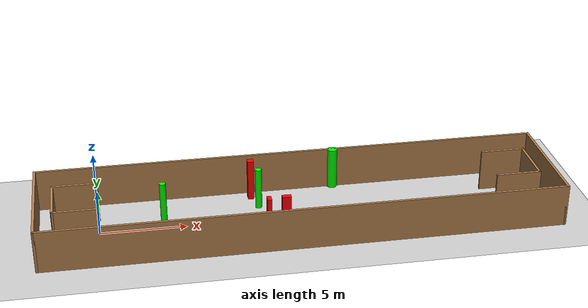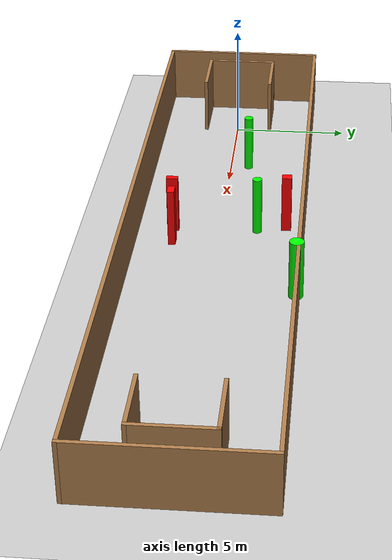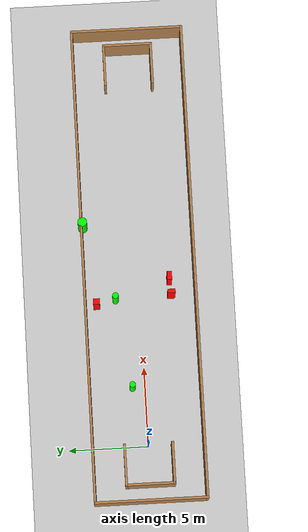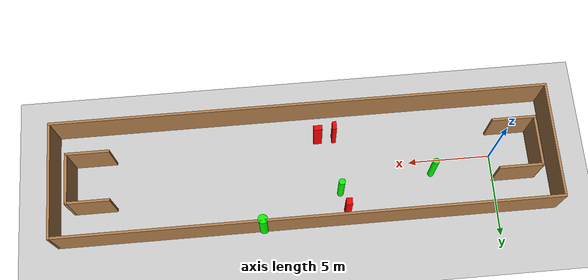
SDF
<sdf version="1.7">
 <world name="default">
  <light name="sun" type="directional">
   <pose>0 0 10 0 -0 0</pose>
   <diffuse>0.8 0.8 0.8 1</diffuse>
   <specular>0.2 0.2 0.2 1</specular>
   <attenuation>
    <range>1000</range>
    <constant>0.9</constant>
    <linear>0.01</linear>
    <quadratic>0.001</quadratic>
   </attenuation>
   <direction>-0.5 0.1 -0.9</direction>
   <spot><inner_angle>0</inner_angle><outer_angle>0</outer_angle><falloff>0</falloff></spot>
  </light>
  <model name="ground_plane">
   <static>1</static>
   <link name="link">
    <collision name="collision">
     <geometry><plane><normal>0 0 1</normal><size>100 100</size></plane></geometry>
     <surface>
      <contact><collide_bitmask>65535</collide_bitmask></contact>
      <friction><ode><mu>100</mu><mu2>50</mu2></ode></friction>
     </surface>
    </collision>
    <visual name="visual">
     <cast_shadows>0</cast_shadows>
     <geometry><plane><normal>0 0 1</normal><size>100 100</size></plane></geometry>
     <material>
      <script><uri>file://media/materials/scripts/gazebo.material</uri><name>Gazebo/Grey</name></script>
     </material>
    </visual>
   </link>
  </model>
  <gravity>0 0 -9.8</gravity>
  <magnetic_field>6e-06 2.3e-05 -4.2e-05</magnetic_field>
  <atmosphere type="adiabatic"/>
  <physics type="ode">
   <max_step_size>0.001</max_step_size>
   <real_time_factor>1</real_time_factor>
   <real_time_update_rate>1000</real_time_update_rate>
  </physics>
  <scene><ambient>0.4 0.4 0.4 1</ambient><background>0.7 0.7 0.7 1</background><shadows>1</shadows></scene>
  <spherical_coordinates>
   <surface_model>EARTH_WGS84</surface_model>
   <latitude_deg>0</latitude_deg>
   <longitude_deg>0</longitude_deg>
   <elevation>0</elevation>
   <heading_deg>0</heading_deg>
  </spherical_coordinates>
  <model name="my_base_walls">
   <link name="Wall_0">
    <collision name="Wall_0_Collision">
     <geometry><box><size>7.15 0.15 2.5</size></box></geometry>
     <pose>0 0 1.25 0 -0 0</pose>
    </collision>
    <visual name="Wall_0_Visual">
     <pose>0 0 1.25 0 -0 0</pose>
     <geometry><box><size>7.15 0.15 2.5</size></box></geometry>
     <material>
      <script><uri>file://media/materials/scripts/gazebo.material</uri><name>Gazebo/Wood</name></script>
      <ambient>1 1 1 1</ambient>
     </material>
     <meta><layer>0</layer></meta>
    </visual>
    <pose>-15 0 0 0 -0 1.5708</pose>
   </link>
   <link name="Wall_10">
    <collision name="Wall_10_Collision">
     <geometry><box><size>2.65 0.15 2.5</size></box></geometry>
     <pose>0 0 1.25 0 -0 0</pose>
    </collision>
    <visual name="Wall_10_Visual">
     <pose>0 0 1.25 0 -0 0</pose>
     <geometry><box><size>2.65 0.15 2.5</size></box></geometry>
     <material>
      <script><uri>file://media/materials/scripts/gazebo.material</uri><name>Gazebo/Wood</name></script>
      <ambient>1 1 1 1</ambient>
     </material>
     <meta><layer>0</layer></meta>
    </visual>
    <pose>-12.75 -1.5 0 0 -0 0</pose>
   </link>
   <link name="Wall_12">
    <collision name="Wall_12_Collision">
     <geometry><box><size>2.65 0.15 2.5</size></box></geometry>
     <pose>0 0 1.25 0 -0 0</pose>
    </collision>
    <visual name="Wall_12_Visual">
     <pose>0 0 1.25 0 -0 0</pose>
     <geometry><box><size>2.65 0.15 2.5</size></box></geometry>
     <material>
      <script><uri>file://media/materials/scripts/gazebo.material</uri><name>Gazebo/Wood</name></script>
      <ambient>1 1 1 1</ambient>
     </material>
     <meta><layer>0</layer></meta>
    </visual>
    <pose>-12.75 1.5 0 0 -0 0</pose>
   </link>
   <link name="Wall_14">
    <collision name="Wall_14_Collision">
     <geometry><box><size>3.15 0.15 2.5</size></box></geometry>
     <pose>0 0 1.25 0 -0 0</pose>
    </collision>
    <visual name="Wall_14_Visual">
     <pose>0 0 1.25 0 -0 0</pose>
     <geometry><box><size>3.15 0.15 2.5</size></box></geometry>
     <material>
      <script><uri>file://media/materials/scripts/gazebo.material</uri><name>Gazebo/Wood</name></script>
      <ambient>1 1 1 1</ambient>
     </material>
     <meta><layer>0</layer></meta>
    </visual>
    <pose>14 0 0 0 -0 -1.5708</pose>
   </link>
   <link name="Wall_15">
    <collision name="Wall_15_Collision">
     <geometry><box><size>2.65 0.15 2.5</size></box></geometry>
     <pose>0 0 1.25 0 -0 0</pose>
    </collision>
    <visual name="Wall_15_Visual">
     <pose>0 0 1.25 0 -0 0</pose>
     <geometry><box><size>2.65 0.15 2.5</size></box></geometry>
     <material>
      <script><uri>file://media/materials/scripts/gazebo.material</uri><name>Gazebo/Wood</name></script>
      <ambient>1 1 1 1</ambient>
     </material>
     <meta><layer>0</layer></meta>
    </visual>
    <pose>12.75 -1.5 0 0 -0 3.14159</pose>
   </link>
   <link name="Wall_17">
    <collision name="Wall_17_Collision">
     <geometry><box><size>2.65 0.15 2.5</size></box></geometry>
     <pose>0 0 1.25 0 -0 0</pose>
    </collision>
    <visual name="Wall_17_Visual">
     <pose>0 0 1.25 0 -0 0</pose>
     <geometry><box><size>2.65 0.15 2.5</size></box></geometry>
     <material>
      <script><uri>file://media/materials/scripts/gazebo.material</uri><name>Gazebo/Wood</name></script>
      <ambient>1 1 1 1</ambient>
     </material>
     <meta><layer>0</layer></meta>
    </visual>
    <pose>12.75 1.5 0 0 -0 3.14159</pose>
   </link>
   <link name="Wall_2">
    <collision name="Wall_2_Collision">
     <geometry><box><size>30.15 0.15 2.5</size></box></geometry>
     <pose>0 0 1.25 0 -0 0</pose>
    </collision>
    <visual name="Wall_2_Visual">
     <pose>0 0 1.25 0 -0 0</pose>
     <geometry><box><size>30.15 0.15 2.5</size></box></geometry>
     <material>
      <script><uri>file://media/materials/scripts/gazebo.material</uri><name>Gazebo/Wood</name></script>
      <ambient>1 1 1 1</ambient>
     </material>
     <meta><layer>0</layer></meta>
    </visual>
    <pose>-0 -3.5 0 0 -0 0</pose>
   </link>
   <link name="Wall_4">
    <collision name="Wall_4_Collision">
     <geometry><box><size>30.15 0.15 2.5</size></box></geometry>
     <pose>0 0 1.25 0 -0 0</pose>
    </collision>
    <visual name="Wall_4_Visual">
     <pose>0 0 1.25 0 -0 0</pose>
     <geometry><box><size>30.15 0.15 2.5</size></box></geometry>
     <material>
      <script><uri>file://media/materials/scripts/gazebo.material</uri><name>Gazebo/Wood</name></script>
      <ambient>1 1 1 1</ambient>
     </material>
     <meta><layer>0</layer></meta>
    </visual>
    <pose>-0 3.5 0 0 -0 0</pose>
   </link>
   <link name="Wall_6">
    <collision name="Wall_6_Collision">
     <geometry><box><size>7.15 0.15 2.5</size></box></geometry>
     <pose>0 0 1.25 0 -0 0</pose>
    </collision>
    <visual name="Wall_6_Visual">
     <pose>0 0 1.25 0 -0 0</pose>
     <geometry><box><size>7.15 0.15 2.5</size></box></geometry>
     <material>
      <script><uri>file://media/materials/scripts/gazebo.material</uri><name>Gazebo/Wood</name></script>
      <ambient>1 1 1 1</ambient>
     </material>
     <meta><layer>0</layer></meta>
    </visual>
    <pose>15 0 0 0 -0 -1.5708</pose>
   </link>
   <link name="Wall_9">
    <collision name="Wall_9_Collision">
     <geometry><box><size>3.15 0.15 2.5</size></box></geometry>
     <pose>0 0 1.25 0 -0 0</pose>
    </collision>
    <visual name="Wall_9_Visual">
     <pose>0 0 1.25 0 -0 0</pose>
     <geometry><box><size>3.15 0.15 2.5</size></box></geometry>
     <material>
      <script><uri>file://media/materials/scripts/gazebo.material</uri><name>Gazebo/Wood</name></script>
      <ambient>1 1 1 1</ambient>
     </material>
     <meta><layer>0</layer></meta>
    </visual>
    <pose>-14 0 0 0 -0 -1.5708</pose>
   </link>
   <static>1</static>
   <pose>11.5 0 0 0 -0 0</pose>
  </model>
  <model name="cylinder1">
   <static>1</static>
   <link name="link">
    <inertial>
     <mass>1</mass>
     <inertia><ixx>0.5</ixx><ixy>0</ixy><ixz>0</ixz><iyy>0.5</iyy><iyz>0</iyz><izz>1</izz></inertia>
    </inertial>
    <collision name="collision">
     <geometry><cylinder><radius>0.19488232402016414</radius><length>2.5</length></cylinder></geometry>
    </collision>
    <visual name="visual">
     <geometry><cylinder><radius>0.19488232402016414</radius><length>2.5</length></cylinder></geometry>
     <material>
      <ambient>0 1 0 1</ambient>
      <diffuse>0 1 0 1</diffuse>
      <specular>0.1 0.1 0.1 1</specular>
      <emissive>0 0 0 0</emissive>
     </material>
    </visual>
   </link>
   <pose>9.387205452405755 1.5751309890313134 1.25 0 0 0</pose>
  </model>
  <model name="cylinder2">
   <static>1</static>
   <link name="link">
    <inertial>
     <mass>1</mass>
     <inertia><ixx>0.5</ixx><ixy>0</ixy><ixz>0</ixz><iyy>0.5</iyy><iyz>0</iyz><izz>1</izz></inertia>
    </inertial>
    <collision name="collision">
     <geometry><cylinder><radius>0.29080756254820306</radius><length>2.5</length></cylinder></geometry>
    </collision>
    <visual name="visual">
     <geometry><cylinder><radius>0.29080756254820306</radius><length>2.5</length></cylinder></geometry>
     <material>
      <ambient>0 1 0 1</ambient>
      <diffuse>0 1 0 1</diffuse>
      <specular>0.1 0.1 0.1 1</specular>
      <emissive>0 0 0 0</emissive>
     </material>
    </visual>
   </link>
   <pose>14.170965650533343 3.4174111948538393 1.25 0 0 0</pose>
  </model>
  <model name="cylinder3">
   <static>1</static>
   <link name="link">
    <inertial>
     <mass>1</mass>
     <inertia><ixx>0.5</ixx><ixy>0</ixy><ixz>0</ixz><iyy>0.5</iyy><iyz>0</iyz><izz>1</izz></inertia>
    </inertial>
    <collision name="collision">
     <geometry><cylinder><radius>0.1891032358977518</radius><length>2.5</length></cylinder></geometry>
    </collision>
    <visual name="visual">
     <geometry><cylinder><radius>0.1891032358977518</radius><length>2.5</length></cylinder></geometry>
     <material>
      <ambient>0 1 0 1</ambient>
      <diffuse>0 1 0 1</diffuse>
      <specular>0.1 0.1 0.1 1</specular>
      <emissive>0 0 0 0</emissive>
     </material>
    </visual>
   </link>
   <pose>3.732092551562692 0.7960617711894589 1.25 0 0 0</pose>
  </model>
  <model name="box1">
   <static>1</static>
   <link name="link">
    <inertial>
     <mass>1</mass>
     <inertia><ixx>0.083</ixx><ixy>0</ixy><ixz>0</ixz><iyy>0.083</iyy><iyz>0</iyz><izz>0.083</izz></inertia>
    </inertial>
    <collision name="collision">
     <geometry><box><size>0.246296347999568 0.4820944152945159 2.5</size></box></geometry>
    </collision>
    <visual name="visual">
     <geometry><box><size>0.246296347999568 0.4820944152945159 2.5</size></box></geometry>
     <material>
      <ambient>1 0 0 1</ambient>
      <diffuse>1 0 0 1</diffuse>
      <specular>0.1 0.1 0.1 1</specular>
      <emissive>0 0 0 0</emissive>
     </material>
    </visual>
    <sensor name="my_contact" type="contact">
     <contact><collision>box_collision</collision><topic>__default_topic__</topic></contact>
    </sensor>
   </link>
   <pose>9.495553178435106 -1.9602518487030407 1.25 0 0 0</pose>
  </model>
  <model name="box2">
   <static>1</static>
   <link name="link">
    <inertial>
     <mass>1</mass>
     <inertia><ixx>0.083</ixx><ixy>0</ixy><ixz>0</ixz><iyy>0.083</iyy><iyz>0</iyz><izz>0.083</izz></inertia>
    </inertial>
    <collision name="collision">
     <geometry><box><size>0.35492480294407713 0.40572897401317837 2.5</size></box></geometry>
    </collision>
    <visual name="visual">
     <geometry><box><size>0.35492480294407713 0.40572897401317837 2.5</size></box></geometry>
     <material>
      <ambient>1 0 0 1</ambient>
      <diffuse>1 0 0 1</diffuse>
      <specular>0.1 0.1 0.1 1</specular>
      <emissive>0 0 0 0</emissive>
     </material>
    </visual>
    <sensor name="my_contact" type="contact">
     <contact><collision>box_collision</collision><topic>__default_topic__</topic></contact>
    </sensor>
   </link>
   <pose>9.074888862464407 2.7845525339955 1.25 0 0 0</pose>
  </model>
  <model name="box3">
   <static>1</static>
   <link name="link">
    <inertial>
     <mass>1</mass>
     <inertia><ixx>0.083</ixx><ixy>0</ixy><ixz>0</ixz><iyy>0.083</iyy><iyz>0</iyz><izz>0.083</izz></inertia>
    </inertial>
    <collision name="collision">
     <geometry><box><size>0.5157617238849865 0.29740185665663293 2.5</size></box></geometry>
    </collision>
    <visual name="visual">
     <geometry><box><size>0.5157617238849865 0.29740185665663293 2.5</size></box></geometry>
     <material>
      <ambient>1 0 0 1</ambient>
      <diffuse>1 0 0 1</diffuse>
      <specular>0.1 0.1 0.1 1</specular>
      <emissive>0 0 0 0</emissive>
     </material>
    </visual>
    <sensor name="my_contact" type="contact">
     <contact><collision>box_collision</collision><topic>__default_topic__</topic></contact>
    </sensor>
   </link>
   <pose>10.495437937303977 -1.8848660556619232 1.25 0 0 0</pose>
  </model>
 </world>
</sdf>
